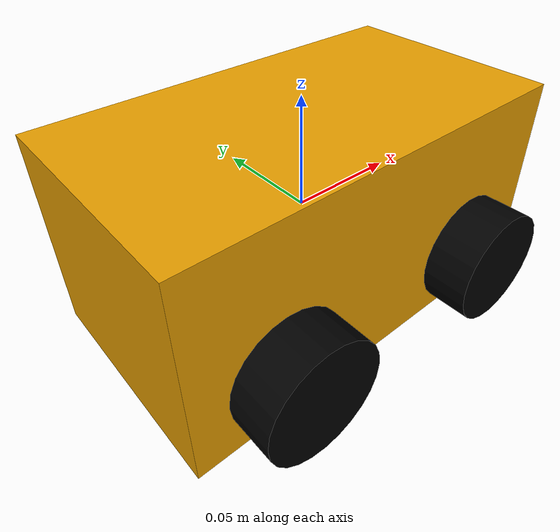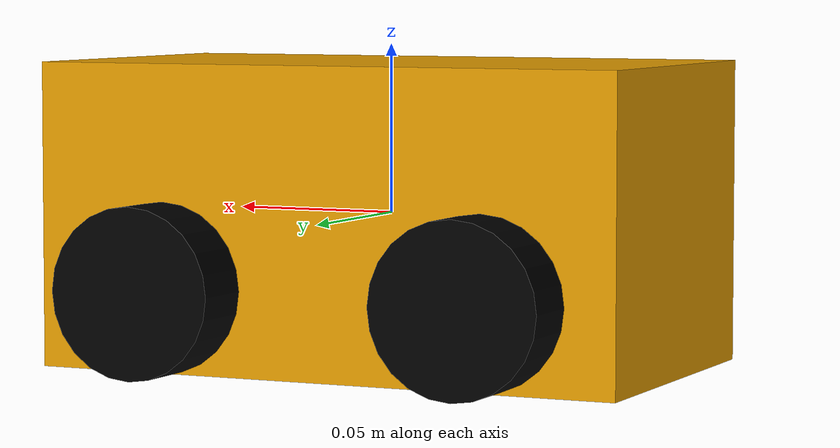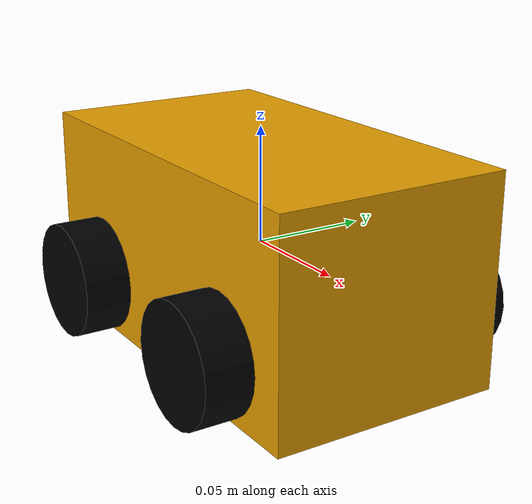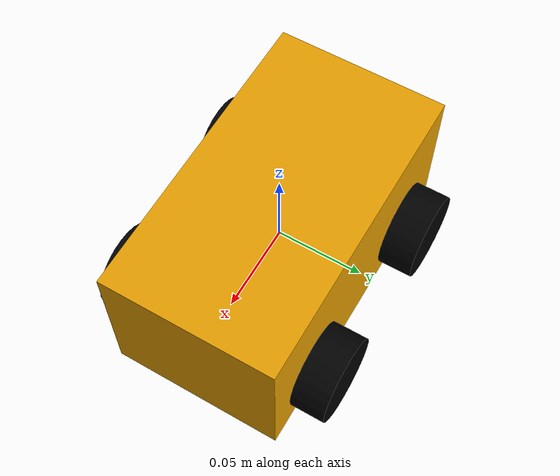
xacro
<?xml version="1.0"?>
<robot xmlns:xacro="http://www.ros.org/wiki/xacro" name="firefighter">

<!-- xacro arguments -->
<xacro:property name="width" value="0.1" />
<xacro:property name="bodylen" value="0.18" />

<!-- xacro macros -->
<xacro:macro name="default_origin">
   <origin rpy="1.57075 0 0" xyz="0 0 0"/>
</xacro:macro>

<xacro:macro name="wheel_create" params="prefix x y z">
	<link name="${prefix}_wheel">
		<visual>
			<xacro:default_origin />
			<geometry>
				<cylinder length="${bodylen/9}" radius="${width/4}"/>
			</geometry>
			<material name="black"/>
		</visual>
		<collision>
			<xacro:default_origin />
			<geometry>
				<cylinder length="${bodylen/9}" radius="${width/4}"/>
			</geometry>
		</collision>
		<inertial>
			<mass value="1"/>
			<inertia ixx="1.0" ixy="0.0" ixz="0.0" iyy="1.0" iyz="0.0" izz="1.0"/>
		</inertial>
	</link>

	<joint name="${prefix}_joint" type="continuous">
		<axis rpy="0 0 0" xyz="0 1 0"/>
		<parent link="base_link"/>
		<child link="${prefix}_wheel"/>
		<origin rpy="0 0 0" xyz="${x} ${y} ${z}"/>
	</joint>
</xacro:macro>

<!-- color -->
<material name="blue">
	<color rgba="0 0 0.8 1"/>
</material>
<material name="black">
	<color rgba="0 0 0 1"/>
</material>
<material name="white">
	<color rgba="1 1 1 1"/>
</material>

<link name="base_link">
	<visual>
		<geometry>
			<box size="${bodylen} ${width} ${bodylen/2}"/>
		</geometry>
	</visual>
	<collision>
		<geometry>
			<box size="${bodylen} ${width} ${bodylen/2}"/>
		</geometry>
	</collision>
	<inertial>
    	<mass value="10"/>
    	<inertia ixx="1.0" ixy="0.0" ixz="0.0" iyy="1.0" iyz="0.0" izz="1.0"/>
	</inertial>
</link>

<xacro:wheel_create prefix="right_front" x="0.05" y="-0.06" z="-0.02" />
<xacro:wheel_create prefix="right_back" x="-0.05" y="-0.06" z="-0.02" />
<xacro:wheel_create prefix="left_front" x="0.05" y="0.06" z="-0.02" />
<xacro:wheel_create prefix="left_back" x="-0.05" y="0.06" z="-0.02" />

</robot>
